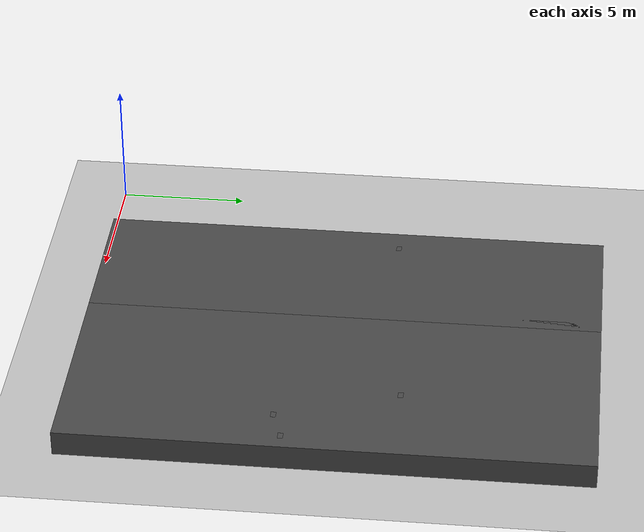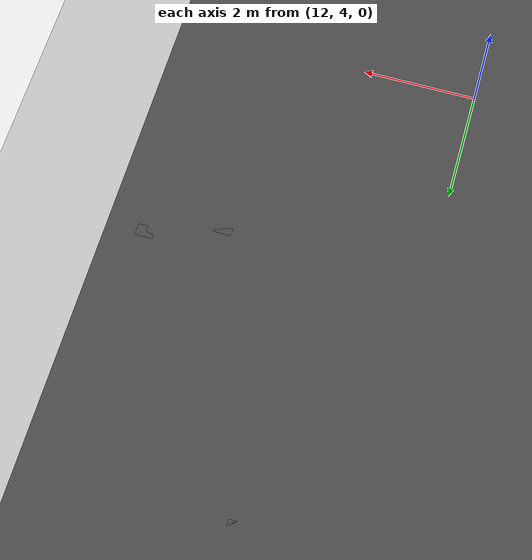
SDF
<?xml version="1.0" ?>
<sdf version="1.6">
  <world name="map_world">
    <physics type="ode">
      <max_step_size>0.001</max_step_size>
      <real_time_factor>1</real_time_factor>
      <real_time_update_rate>1000</real_time_update_rate>
      <gravity>0 0 -9.8</gravity>
    </physics>

    <scene>
      <ambient>0.4 0.4 0.4 1</ambient>
      <background>0.7 0.7 0.7 1</background>
      <shadows>1</shadows>
    </scene>

    <light type="directional" name="sun">
      <cast_shadows>1</cast_shadows>
      <pose>0 0 10 0 0 0</pose>
      <diffuse>0.8 0.8 0.8 1</diffuse>
      <specular>0.2 0.2 0.2 1</specular>
      <attenuation>
        <range>1000</range>
        <constant>0.9</constant>
        <linear>0.01</linear>
        <quadratic>0.001</quadratic>
      </attenuation>
      <direction>-0.5 0.5 -1</direction>
    </light>

    <model name="ground_plane">
      <static>true</static>
      <link name="link">
        <collision name="collision">
          <geometry>
            <plane>
              <normal>0 0 1</normal>
              <size>100 100</size>
            </plane>
          </geometry>
        </collision>
        <visual name="visual">
          <geometry>
            <plane>
              <normal>0 0 1</normal>
              <size>100 100</size>
            </plane>
          </geometry>
          <material>
            <ambient>0.8 0.8 0.8 1</ambient>
            <diffuse>0.8 0.8 0.8 1</diffuse>
            <specular>0.8 0.8 0.8 1</specular>
          </material>
        </visual>
      </link>
    </model>

    <model name="obstacle_26">
      <static>true</static>
      <pose>13.75 12.700000000000001 0.5 0 0 0</pose>
      <link name="link">
        <collision name="collision">
          <geometry>
            <box>
              <size>0.30000000000000004 0.2 1.0</size>
            </box>
          </geometry>
        </collision>
        <visual name="visual">
          <geometry>
            <box>
              <size>0.30000000000000004 0.2 1.0</size>
            </box>
          </geometry>
          <material>
            <ambient>0.3 0.3 0.3 1</ambient>
            <diffuse>0.3 0.3 0.3 1</diffuse>
            <specular>0.3 0.3 0.3 1</specular>
          </material>
        </visual>
      </link>
    </model>

    <model name="obstacle_41">
      <static>true</static>
      <pose>4.25 11.9 0.5 0 0 0</pose>
      <link name="link">
        <collision name="collision">
          <geometry>
            <box>
              <size>0.30000000000000004 0.2 1.0</size>
            </box>
          </geometry>
        </collision>
        <visual name="visual">
          <geometry>
            <box>
              <size>0.30000000000000004 0.2 1.0</size>
            </box>
          </geometry>
          <material>
            <ambient>0.3 0.3 0.3 1</ambient>
            <diffuse>0.3 0.3 0.3 1</diffuse>
            <specular>0.3 0.3 0.3 1</specular>
          </material>
        </visual>
      </link>
    </model>

    <model name="obstacle_63">
      <static>true</static>
      <pose>16.55 8.5 0.5 0 0 0</pose>
      <link name="link">
        <collision name="collision">
          <geometry>
            <box>
              <size>0.30000000000000004 0.2 1.0</size>
            </box>
          </geometry>
        </collision>
        <visual name="visual">
          <geometry>
            <box>
              <size>0.30000000000000004 0.2 1.0</size>
            </box>
          </geometry>
          <material>
            <ambient>0.3 0.3 0.3 1</ambient>
            <diffuse>0.3 0.3 0.3 1</diffuse>
            <specular>0.3 0.3 0.3 1</specular>
          </material>
        </visual>
      </link>
    </model>

    <model name="obstacle_69">
      <static>true</static>
      <pose>15.350000000000001 8.1 0.5 0 0 0</pose>
      <link name="link">
        <collision name="collision">
          <geometry>
            <box>
              <size>0.30000000000000004 0.2 1.0</size>
            </box>
          </geometry>
        </collision>
        <visual name="visual">
          <geometry>
            <box>
              <size>0.30000000000000004 0.2 1.0</size>
            </box>
          </geometry>
          <material>
            <ambient>0.3 0.3 0.3 1</ambient>
            <diffuse>0.3 0.3 0.3 1</diffuse>
            <specular>0.3 0.3 0.3 1</specular>
          </material>
        </visual>
      </link>
    </model>

    <model name="obstacle_110">
      <static>true</static>
      <pose>12.9 10.100000000000001 0.5 0 0 0</pose>
      <link name="link">
        <collision name="collision">
          <geometry>
            <box>
              <size>8.6 20.0 1.0</size>
            </box>
          </geometry>
        </collision>
        <visual name="visual">
          <geometry>
            <box>
              <size>8.6 20.0 1.0</size>
            </box>
          </geometry>
          <material>
            <ambient>0.3 0.3 0.3 1</ambient>
            <diffuse>0.3 0.3 0.3 1</diffuse>
            <specular>0.3 0.3 0.3 1</specular>
          </material>
        </visual>
      </link>
    </model>

    <model name="obstacle_111">
      <static>true</static>
      <pose>6.175000000000001 10.100000000000001 0.5 0 0 0</pose>
      <link name="link">
        <collision name="collision">
          <geometry>
            <box>
              <size>5.8500000000000005 20.0 1.0</size>
            </box>
          </geometry>
        </collision>
        <visual name="visual">
          <geometry>
            <box>
              <size>5.8500000000000005 20.0 1.0</size>
            </box>
          </geometry>
          <material>
            <ambient>0.3 0.3 0.3 1</ambient>
            <diffuse>0.3 0.3 0.3 1</diffuse>
            <specular>0.3 0.3 0.3 1</specular>
          </material>
        </visual>
      </link>
    </model>

  </world>
</sdf>
